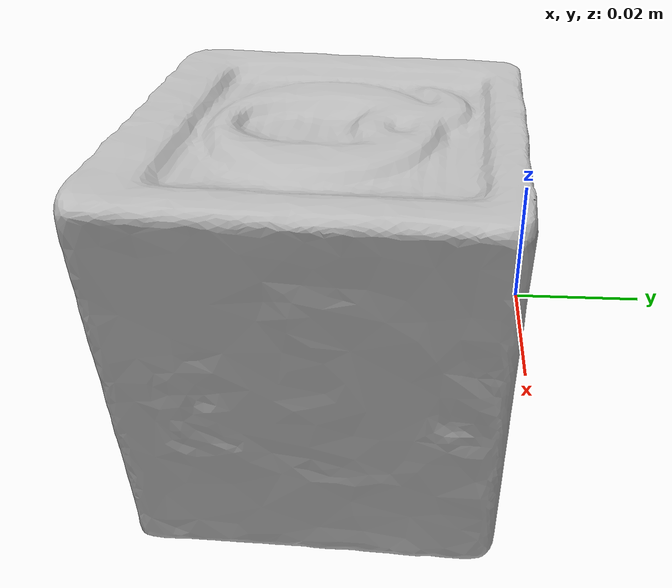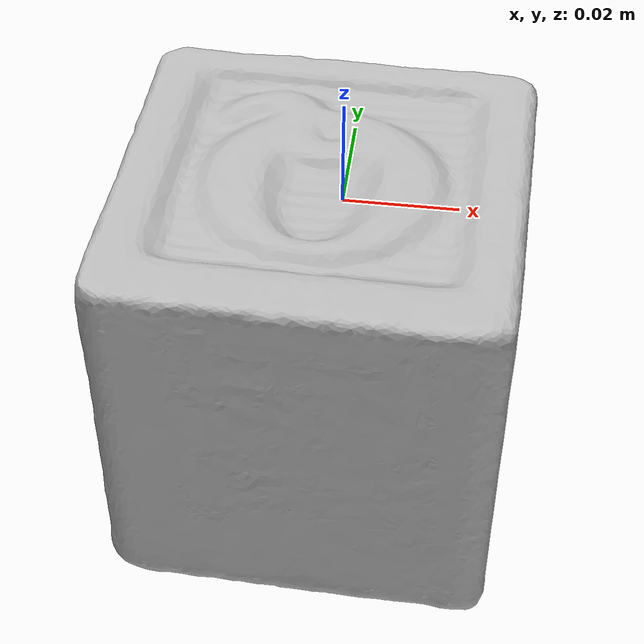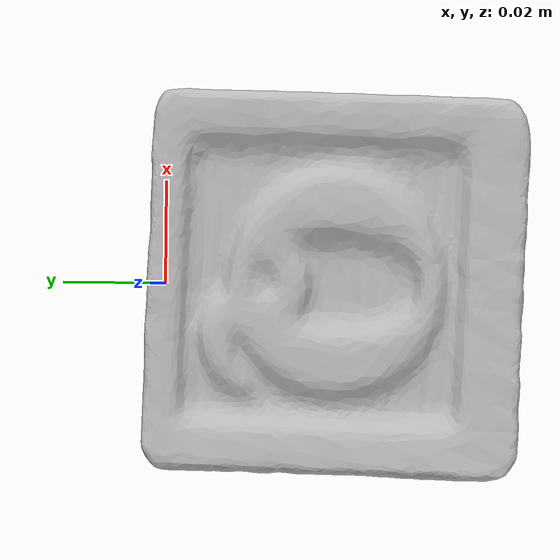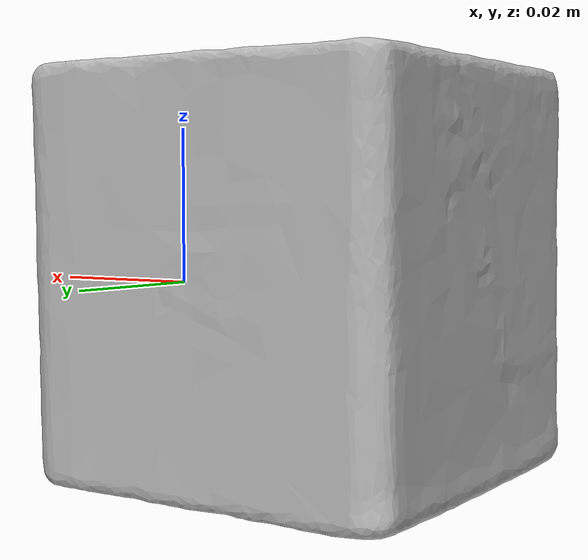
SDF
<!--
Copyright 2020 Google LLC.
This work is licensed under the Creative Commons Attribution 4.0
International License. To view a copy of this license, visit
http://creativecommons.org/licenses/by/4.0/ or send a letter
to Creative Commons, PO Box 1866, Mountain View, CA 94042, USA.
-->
<?xml version="1.0" ?>

<sdf version="1.5">
    <model name="ABC_BLOCK">
        <static>true</static>
		<self_collide>true</self_collide>
        <link name="link_0">
            <self_collide>1</self_collide>
                <inertial>
                    <inertia>
                    <ixx>2.50772e-05</ixx>
                    <ixy>0</ixy>
                    <ixz>0</ixz>
                    <iyy>2.50772e-05</iyy>
                    <iyz>0</iyz>
                    <izz>2.50772e-05</izz>
                    </inertia>
                    <mass>0.0601</mass>
                </inertial>
            <collision name="ABC_BLOCK_collision">
                <pose frame=''>-0 -0.031 0 0 -0 0</pose>
                <geometry>
                	<box>
                        <size>0.06 0.06 0.06</size>
                        <scale> 2 2 2 </scale>
                    </box>
                </geometry>
            </collision>

            <visual name="ABC_BLOCK_visual">
                <cast_shadows>true</cast_shadows>
                <geometry>
                    <mesh>
                        <uri>model://ABC_BLOCK/meshes/model.dae</uri>
                        <scale> 2 2 2 </scale>
                    </mesh>
                </geometry>
                <surface>
                    <friction>
                        <ode>
                        <mu>10000</mu>
                        <mu2>10000</mu2>
                        <fdir1>0 0 0</fdir1>
                        <slip1>0</slip1>
                        <slip2>0</slip2>
                        </ode>
                        <torsional>
                        <coefficient>1000</coefficient>
                        <patch_radius>0</patch_radius>
                        <surface_radius>0</surface_radius>
                        <use_patch_radius>1</use_patch_radius>
                        <ode>
                            <slip>0</slip>
                        </ode>
                        </torsional>
                    </friction>
                    <bounce>
                        <restitution_coefficient>0</restitution_coefficient>
                        <threshold>1e+06</threshold>
                    </bounce>
                    <contact>
                        <collide_without_contact>0</collide_without_contact>
                        <collide_without_contact_bitmask>1</collide_without_contact_bitmask>
                        <collide_bitmask>1</collide_bitmask>
                        <ode>
                        <soft_cfm>0</soft_cfm>
                        <soft_erp>0.2</soft_erp>
                        <kp>1e+13</kp>
                        <kd>1</kd>
                        <max_vel>0.01</max_vel>
                        <min_depth>0</min_depth>
                        </ode>
                        <bullet>
                        <split_impulse>1</split_impulse>
                        <split_impulse_penetration_threshold>-0.01</split_impulse_penetration_threshold>
                        <soft_cfm>0</soft_cfm>
                        <soft_erp>0.2</soft_erp>
                        <kp>1e+13</kp>
                        <kd>1</kd>
                        </bullet>
                    </contact>
                </surface>
            </visual>
        </link>
    </model>
</sdf>
